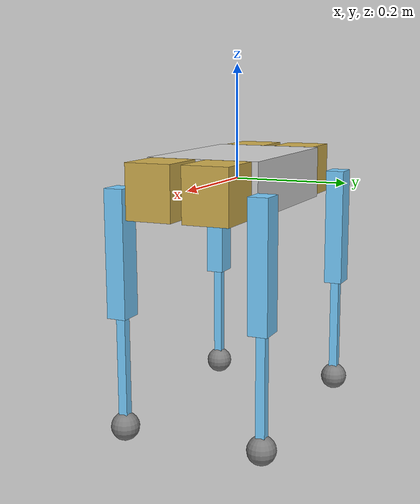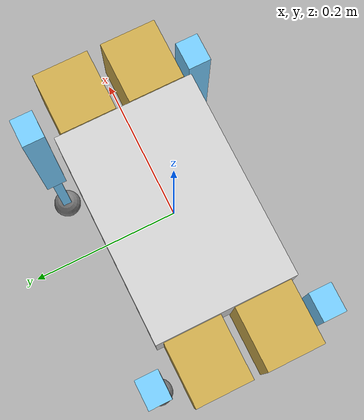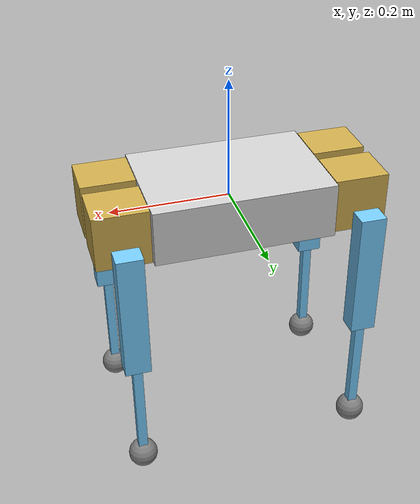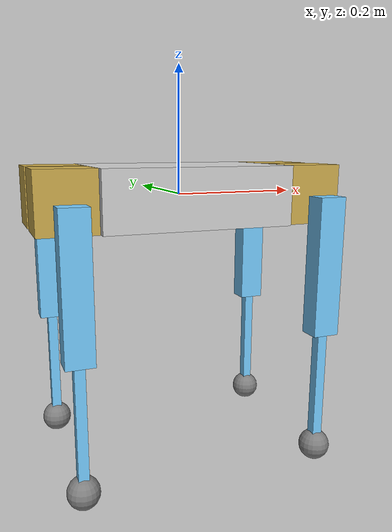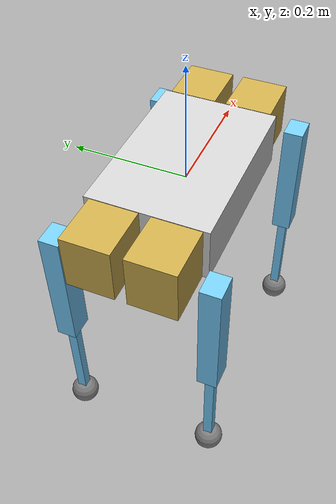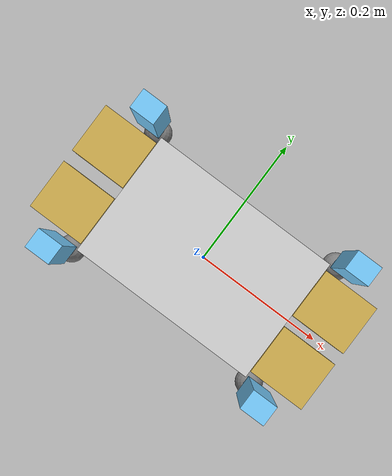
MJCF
<mujoco model="mini_cheetah">
  <compiler angle="radian"/>

  <worldbody>
    <geom size="0.15 0.1 0.0465" type="box" rgba="0.823529 0.823529 0.823529 1"/>
    <body name="RL_hip" pos="-0.196 0.049664 0">
      <inertial pos="0 -0.036 0" quat="0.707107 0 0 0.707107" mass="0.57" diaginertia="0.000795577 0.000714827 0.00068875"/>
      <joint name="RL_hip_joint" pos="0 0 0" axis="1 0 0" range="-0.872665 1.0472" actuatorfrcrange="-20 20"/>
      <geom size="0.045 0.04 0.0465" type="box" rgba="0.811765 0.678431 0.301961 1"/>
      <body name="RL_thigh" pos="0 0.077476 0">
        <inertial pos="0 -0.016 -0.11" quat="0.707107 0 0 0.707107" mass="0.634" diaginertia="0.00265482 0.00261821 0.000158764"/>
        <joint name="RL_thigh_joint" pos="0 0 0" axis="0 1 0" range="-0.523599 3.92699" actuatorfrcrange="-20 20"/>
        <geom size="0.0215 0.017 0.11" pos="0 0 -0.11" type="box" rgba="0.462745 0.8 0.992157 1"/>
        <body name="RL_calf" pos="0 0 -0.2115">
          <inertial pos="0 0 -0.161488" mass="0.214" diaginertia="0.00263797 0.00263797 4.48657e-05"/>
          <joint name="RL_calf_joint" pos="0 0 0" axis="0 1 0" range="-3.14159 3.14159" actuatorfrcrange="-20 20"/>
          <geom size="0.008 0.008 0.1" pos="0 0 -0.1" type="box" rgba="0.462745 0.8 0.992157 1"/>
          <geom size="0.025" pos="0 0 -0.20539" rgba="0.494118 0.494118 0.494118 1"/>
        </body>
      </body>
    </body>
    <body name="FL_hip" pos="0.196 0.049664 0">
      <inertial pos="0 -0.036 0" quat="0.707107 0 0 0.707107" mass="0.57" diaginertia="0.000795577 0.000714827 0.00068875"/>
      <joint name="FL_hip_joint" pos="0 0 0" axis="1 0 0" range="-0.872665 1.0472" actuatorfrcrange="-20 20"/>
      <geom size="0.045 0.04 0.0465" type="box" rgba="0.811765 0.678431 0.301961 1"/>
      <body name="FL_thigh" pos="0 0.077476 0">
        <inertial pos="0 -0.016 -0.11" quat="0.707107 0 0 0.707107" mass="0.634" diaginertia="0.00265482 0.00261821 0.000158764"/>
        <joint name="FL_thigh_joint" pos="0 0 0" axis="0 1 0" range="-0.523599 3.92699" actuatorfrcrange="-20 20"/>
        <geom size="0.0215 0.017 0.11" pos="0 0 -0.11" type="box" rgba="0.462745 0.8 0.992157 1"/>
        <body name="FL_calf" pos="0 0 -0.2115">
          <inertial pos="0 0 -0.161488" mass="0.214" diaginertia="0.00263797 0.00263797 4.48657e-05"/>
          <joint name="FL_calf_joint" pos="0 0 0" axis="0 1 0" range="-3.14159 3.14159" actuatorfrcrange="-20 20"/>
          <geom size="0.008 0.008 0.1" pos="0 0 -0.1" type="box" rgba="0.462745 0.8 0.992157 1"/>
          <geom size="0.025" pos="0 0 -0.20539" rgba="0.494118 0.494118 0.494118 1"/>
        </body>
      </body>
    </body>
    <body name="RR_hip" pos="-0.196 -0.049664 0">
      <inertial pos="0 0.036 0" quat="0.707107 0 0 0.707107" mass="0.57" diaginertia="0.000795577 0.000714827 0.00068875"/>
      <joint name="RR_hip_joint" pos="0 0 0" axis="1 0 0" range="-1.0472 0.872665" actuatorfrcrange="-20 20"/>
      <geom size="0.045 0.04 0.0465" type="box" rgba="0.811765 0.678431 0.301961 1"/>
      <body name="RR_thigh" pos="0 -0.077476 0">
        <inertial pos="0 0.016 -0.11" quat="0.707107 0 0 0.707107" mass="0.634" diaginertia="0.00265482 0.00261821 0.000158764"/>
        <joint name="RR_thigh_joint" pos="0 0 0" axis="0 1 0" range="-0.523599 3.92699" actuatorfrcrange="-20 20"/>
        <geom size="0.0215 0.017 0.11" pos="0 0 -0.11" type="box" rgba="0.462745 0.8 0.992157 1"/>
        <body name="RR_calf" pos="0 0 -0.2115">
          <inertial pos="0 0 -0.161488" mass="0.214" diaginertia="0.00263797 0.00263797 4.48657e-05"/>
          <joint name="RR_calf_joint" pos="0 0 0" axis="0 1 0" range="-3.14159 3.14159" actuatorfrcrange="-20 20"/>
          <geom size="0.008 0.008 0.1" pos="0 0 -0.1" type="box" rgba="0.462745 0.8 0.992157 1"/>
          <geom size="0.025" pos="0 0 -0.20539" rgba="0.494118 0.494118 0.494118 1"/>
        </body>
      </body>
    </body>
    <body name="FR_hip" pos="0.196 -0.049664 0">
      <inertial pos="0 0.036 0" quat="0.707107 0 0 0.707107" mass="0.57" diaginertia="0.000795577 0.000714827 0.00068875"/>
      <joint name="FR_hip_joint" pos="0 0 0" axis="1 0 0" range="-1.0472 0.872665" actuatorfrcrange="-20 20"/>
      <geom size="0.045 0.04 0.0465" type="box" rgba="0.811765 0.678431 0.301961 1"/>
      <body name="FR_thigh" pos="0 -0.077476 0">
        <inertial pos="0 0.016 -0.11" quat="0.707107 0 0 0.707107" mass="0.634" diaginertia="0.00265482 0.00261821 0.000158764"/>
        <joint name="FR_thigh_joint" pos="0 0 0" axis="0 1 0" range="-0.523599 3.92699" actuatorfrcrange="-20 20"/>
        <geom size="0.0215 0.017 0.11" pos="0 0 -0.11" type="box" rgba="0.462745 0.8 0.992157 1"/>
        <body name="FR_calf" pos="0 0 -0.2115">
          <inertial pos="0 0 -0.161488" mass="0.214" diaginertia="0.00263797 0.00263797 4.48657e-05"/>
          <joint name="FR_calf_joint" pos="0 0 0" axis="0 1 0" range="-3.14159 3.14159" actuatorfrcrange="-20 20"/>
          <geom size="0.008 0.008 0.1" pos="0 0 -0.1" type="box" rgba="0.462745 0.8 0.992157 1"/>
          <geom size="0.025" pos="0 0 -0.20539" rgba="0.494118 0.494118 0.494118 1"/>
        </body>
      </body>
    </body>
  </worldbody>
</mujoco>
